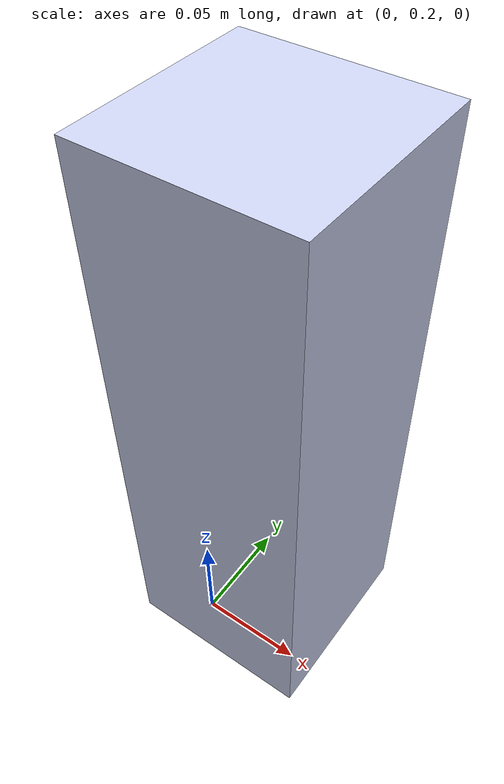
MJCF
<mujoco model="Assembly_mounting_rod">
  <worldbody>
    <body name="base_link" pos="0 0.25 0.1">
      <inertial pos="0.026479 0.046811 0.13843" mass="0.192"
                fullinertia="5.6605E-05 0.0058066 0.00577 6.0086E-20 2.0959E-19 1.3754E-20" />
      <geom type="box" size="0.05 0.05 0.15" rgba="0.79216 0.81961 0.93333 1"
            friction="1 0.1 0.1" />
    </body>
  </worldbody>
</mujoco>
